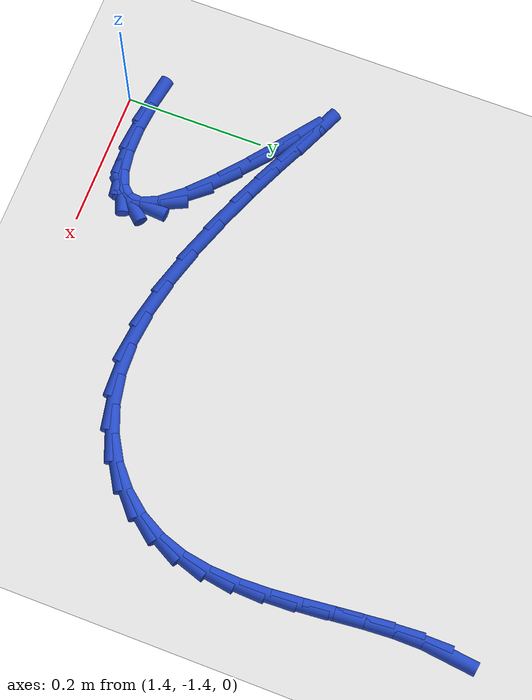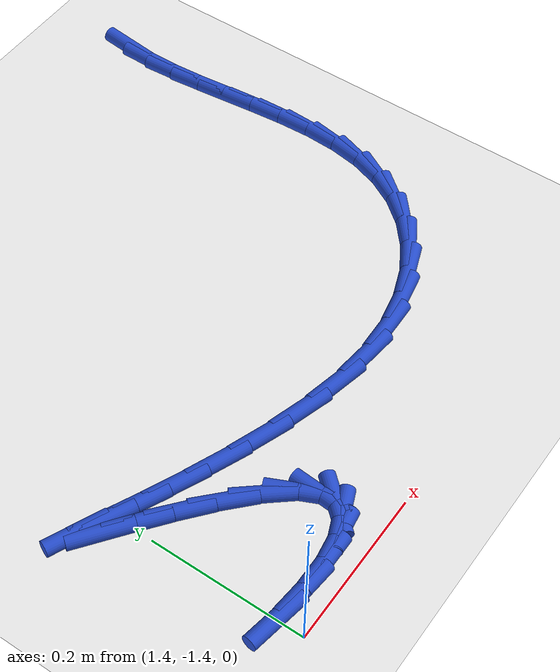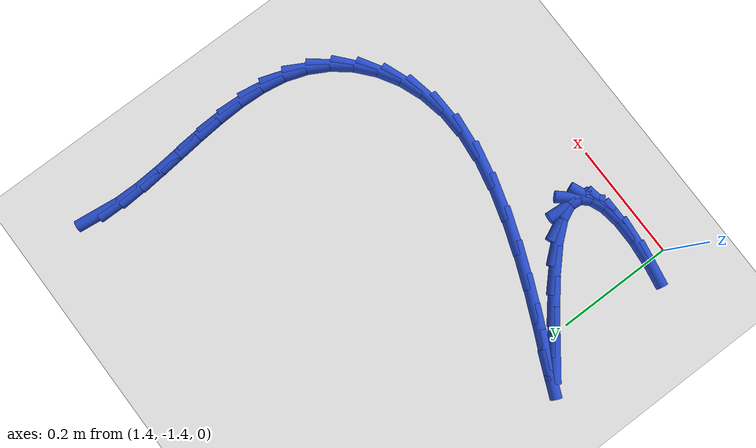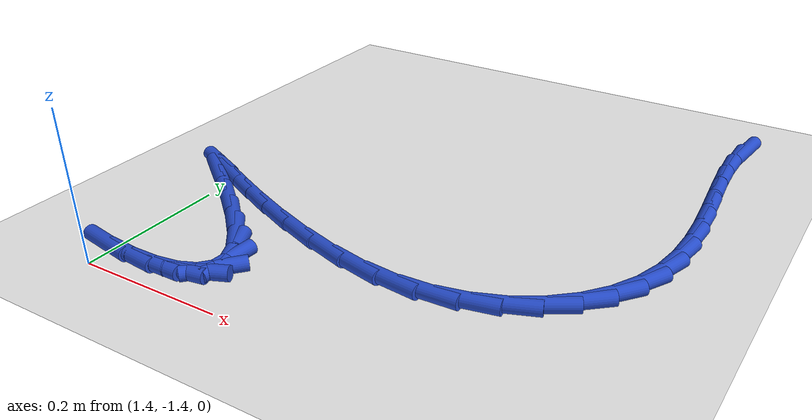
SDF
<sdf version="1.6">
 <world name="default">
  <model name="ground_plane">
   <static>1</static>
   <link name="link">
    <collision name="collision">
     <geometry><plane><normal>0 0 1</normal><size>100 100</size></plane></geometry>
     <surface><friction><ode><mu>100</mu><mu2>50</mu2></ode></friction></surface>
    </collision>
    <visual name="visual">
     <cast_shadows>0</cast_shadows>
     <geometry><plane><normal>0 0 1</normal><size>100 100</size></plane></geometry>
     <material>
      <script><uri>file://media/materials/scripts/gazebo.material</uri><name>Gazebo/WhiteGlow</name></script>
     </material>
    </visual>
   </link>
  </model>
  <model name="line">
   <link name="link_135">
    <pose>1.9930893218824468 -0.7109536044052941 0.01 0 1.57 1.4560143768241374</pose>
    <collision name="collision">
     <geometry><cylinder><radius>0.01</radius><length>0.08</length></cylinder></geometry>
    </collision>
    <visual name="visual">
     <material>
      <script><name>Gazebo/Blue</name><uri>file://media/materials/scripts/gazebo.material</uri></script>
     </material>
     <geometry><cylinder><radius>0.01</radius><length>0.08</length></cylinder></geometry>
    </visual>
   </link>
   <link name="link_136">
    <pose>1.9888282580443786 -0.7479135476541611 0.01 0 1.57 1.56541592826664</pose>
    <collision name="collision">
     <geometry><cylinder><radius>0.01</radius><length>0.08</length></cylinder></geometry>
    </collision>
    <visual name="visual">
     <material>
      <script><name>Gazebo/Blue</name><uri>file://media/materials/scripts/gazebo.material</uri></script>
     </material>
     <geometry><cylinder><radius>0.01</radius><length>0.08</length></cylinder></geometry>
    </visual>
   </link>
   <link name="link_137">
    <pose>1.9886161925768024 -0.7873276208161084 0.01 0 1.57 -1.507919849885243</pose>
    <collision name="collision">
     <geometry><cylinder><radius>0.01</radius><length>0.08</length></cylinder></geometry>
    </collision>
    <visual name="visual">
     <material>
      <script><name>Gazebo/Blue</name><uri>file://media/materials/scripts/gazebo.material</uri></script>
     </material>
     <geometry><cylinder><radius>0.01</radius><length>0.08</length></cylinder></geometry>
    </visual>
   </link>
   <link name="link_138">
    <pose>1.9912142927350704 -0.828593855220499 0.01 0 1.57 -1.473042491546014</pose>
    <collision name="collision">
     <geometry><cylinder><radius>0.01</radius><length>0.08</length></cylinder></geometry>
    </collision>
    <visual name="visual">
     <material>
      <script><name>Gazebo/Blue</name><uri>file://media/materials/scripts/gazebo.material</uri></script>
     </material>
     <geometry><cylinder><radius>0.01</radius><length>0.08</length></cylinder></geometry>
    </visual>
   </link>
   <link name="link_139">
    <pose>1.995383725774534 -0.871110282196696 0.01 0 1.57 -1.4668752924880777</pose>
    <collision name="collision">
     <geometry><cylinder><radius>0.01</radius><length>0.08</length></cylinder></geometry>
    </collision>
    <visual name="visual">
     <material>
      <script><name>Gazebo/Blue</name><uri>file://media/materials/scripts/gazebo.material</uri></script>
     </material>
     <geometry><cylinder><radius>0.01</radius><length>0.08</length></cylinder></geometry>
    </visual>
   </link>
   <link name="link_140">
    <pose>1.9998856589505438 -0.9142749330740632 0.01 0 1.57 -1.4877770946438442</pose>
    <collision name="collision">
     <geometry><cylinder><radius>0.01</radius><length>0.08</length></cylinder></geometry>
    </collision>
    <visual name="visual">
     <material>
      <script><name>Gazebo/Blue</name><uri>file://media/materials/scripts/gazebo.material</uri></script>
     </material>
     <geometry><cylinder><radius>0.01</radius><length>0.08</length></cylinder></geometry>
    </visual>
   </link>
   <link name="link_141">
    <pose>2.003481259518451 -0.9574858391819606 0.01 0 1.57 -1.5368057036457148</pose>
    <collision name="collision">
     <geometry><cylinder><radius>0.01</radius><length>0.08</length></cylinder></geometry>
    </collision>
    <visual name="visual">
     <material>
      <script><name>Gazebo/Blue</name><uri>file://media/materials/scripts/gazebo.material</uri></script>
     </material>
     <geometry><cylinder><radius>0.01</radius><length>0.08</length></cylinder></geometry>
    </visual>
   </link>
   <link name="link_142">
    <pose>2.004931694733608 -1.0001410318497532 0.01 0 1.57 1.5242353311985628</pose>
    <collision name="collision">
     <geometry><cylinder><radius>0.01</radius><length>0.08</length></cylinder></geometry>
    </collision>
    <visual name="visual">
     <material>
      <script><name>Gazebo/Blue</name><uri>file://media/materials/scripts/gazebo.material</uri></script>
     </material>
     <geometry><cylinder><radius>0.01</radius><length>0.08</length></cylinder></geometry>
    </visual>
   </link>
   <link name="link_143">
    <pose>2.002998131851366 -1.0416385424068038 0.01 0 1.57 1.4072783591644038</pose>
    <collision name="collision">
     <geometry><cylinder><radius>0.01</radius><length>0.08</length></cylinder></geometry>
    </collision>
    <visual name="visual">
     <material>
      <script><name>Gazebo/Blue</name><uri>file://media/materials/scripts/gazebo.material</uri></script>
     </material>
     <geometry><cylinder><radius>0.01</radius><length>0.08</length></cylinder></geometry>
    </visual>
   </link>
   <link name="link_144">
    <pose>1.996441738127076 -1.0813764021824759 0.01 0 1.57 1.2504246719516807</pose>
    <collision name="collision">
     <geometry><cylinder><radius>0.01</radius><length>0.08</length></cylinder></geometry>
    </collision>
    <visual name="visual">
     <material>
      <script><name>Gazebo/Blue</name><uri>file://media/materials/scripts/gazebo.material</uri></script>
     </material>
     <geometry><cylinder><radius>0.01</radius><length>0.08</length></cylinder></geometry>
    </visual>
   </link>
   <link name="link_145">
    <pose>1.9840405541509372 -1.1187516644039261 0.01 0 1.57 1.0702103163533605</pose>
    <collision name="collision">
     <geometry><cylinder><radius>0.01</radius><length>0.08</length></cylinder></geometry>
    </collision>
    <visual name="visual">
     <material>
      <script><name>Gazebo/Blue</name><uri>file://media/materials/scripts/gazebo.material</uri></script>
     </material>
     <geometry><cylinder><radius>0.01</radius><length>0.08</length></cylinder></geometry>
    </visual>
   </link>
   <link name="link_146">
    <pose>1.9652373278178834 -1.153122850989249 0.01 0 1.57 0.8890637544611137</pose>
    <collision name="collision">
     <geometry><cylinder><radius>0.01</radius><length>0.08</length></cylinder></geometry>
    </collision>
    <visual name="visual">
     <material>
      <script><name>Gazebo/Blue</name><uri>file://media/materials/scripts/gazebo.material</uri></script>
     </material>
     <geometry><cylinder><radius>0.01</radius><length>0.08</length></cylinder></geometry>
    </visual>
   </link>
   <link name="link_147">
    <pose>1.940343385474331 -1.183798134681011 0.01 0 1.57 0.7094340647532353</pose>
    <collision name="collision">
     <geometry><cylinder><radius>0.01</radius><length>0.08</length></cylinder></geometry>
    </collision>
    <visual name="visual">
     <material>
      <script><name>Gazebo/Blue</name><uri>file://media/materials/scripts/gazebo.material</uri></script>
     </material>
     <geometry><cylinder><radius>0.01</radius><length>0.08</length></cylinder></geometry>
    </visual>
   </link>
   <link name="link_148">
    <pose>1.9097286179134831 -1.2100822933970414 0.01 0 1.57 0.5325812234509781</pose>
    <collision name="collision">
     <geometry><cylinder><radius>0.01</radius><length>0.08</length></cylinder></geometry>
    </collision>
    <visual name="visual">
     <material>
      <script><name>Gazebo/Blue</name><uri>file://media/materials/scripts/gazebo.material</uri></script>
     </material>
     <geometry><cylinder><radius>0.01</radius><length>0.08</length></cylinder></geometry>
    </visual>
   </link>
   <link name="link_149">
    <pose>1.873762915928547 -1.231280105055171 0.01 0 1.57 0.36008065767033426</pose>
    <collision name="collision">
     <geometry><cylinder><radius>0.01</radius><length>0.08</length></cylinder></geometry>
    </collision>
    <visual name="visual">
     <material>
      <script><name>Gazebo/Blue</name><uri>file://media/materials/scripts/gazebo.material</uri></script>
     </material>
     <geometry><cylinder><radius>0.01</radius><length>0.08</length></cylinder></geometry>
    </visual>
   </link>
   <link name="link_150">
    <pose>1.8328161703127264 -1.2466963475732307 0.01 0 1.57 0.19376001714990487</pose>
    <collision name="collision">
     <geometry><cylinder><radius>0.01</radius><length>0.08</length></cylinder></geometry>
    </collision>
    <visual name="visual">
     <material>
      <script><name>Gazebo/Blue</name><uri>file://media/materials/scripts/gazebo.material</uri></script>
     </material>
     <geometry><cylinder><radius>0.01</radius><length>0.08</length></cylinder></geometry>
    </visual>
   </link>
   <link name="link_151">
    <pose>1.7872582718592263 -1.255635798869051 0.01 0 1.57 0.0354764302422073</pose>
    <collision name="collision">
     <geometry><cylinder><radius>0.01</radius><length>0.08</length></cylinder></geometry>
    </collision>
    <visual name="visual">
     <material>
      <script><name>Gazebo/Blue</name><uri>file://media/materials/scripts/gazebo.material</uri></script>
     </material>
     <geometry><cylinder><radius>0.01</radius><length>0.08</length></cylinder></geometry>
    </visual>
   </link>
   <link name="link_152">
    <pose>1.7374591113612508 -1.257403236860462 0.01 0 1.57 -0.10801840522885872</pose>
    <collision name="collision">
     <geometry><cylinder><radius>0.01</radius><length>0.08</length></cylinder></geometry>
    </collision>
    <visual name="visual">
     <material>
      <script><name>Gazebo/Blue</name><uri>file://media/materials/scripts/gazebo.material</uri></script>
     </material>
     <geometry><cylinder><radius>0.01</radius><length>0.08</length></cylinder></geometry>
    </visual>
   </link>
   <link name="link_153">
    <pose>1.6839769914389022 -1.2516036093547231 0.01 0 1.57 -0.2151621604449955</pose>
    <collision name="collision">
     <geometry><cylinder><radius>0.01</radius><length>0.08</length></cylinder></geometry>
    </collision>
    <visual name="visual">
     <material>
      <script><name>Gazebo/Blue</name><uri>file://media/materials/scripts/gazebo.material</uri></script>
     </material>
     <geometry><cylinder><radius>0.01</radius><length>0.08</length></cylinder></geometry>
    </visual>
   </link>
   <link name="link_154">
    <pose>1.6283818525208857 -1.2394535634571058 0.01 0 1.57 -0.2915417235025367</pose>
    <collision name="collision">
     <geometry><cylinder><radius>0.01</radius><length>0.08</length></cylinder></geometry>
    </collision>
    <visual name="visual">
     <material>
      <script><name>Gazebo/Blue</name><uri>file://media/materials/scripts/gazebo.material</uri></script>
     </material>
     <geometry><cylinder><radius>0.01</radius><length>0.08</length></cylinder></geometry>
    </visual>
   </link>
   <link name="link_155">
    <pose>1.5725817113553846 -1.2227083554096212 0.01 0 1.57 -0.347352129865299</pose>
    <collision name="collision">
     <geometry><cylinder><radius>0.01</radius><length>0.08</length></cylinder></geometry>
    </collision>
    <visual name="visual">
     <material>
      <script><name>Gazebo/Blue</name><uri>file://media/materials/scripts/gazebo.material</uri></script>
     </material>
     <geometry><cylinder><radius>0.01</radius><length>0.08</length></cylinder></geometry>
    </visual>
   </link>
   <link name="link_156">
    <pose>1.518484823048776 -1.2031236211966432 0.01 0 1.57 -0.3885819360690573</pose>
    <collision name="collision">
     <geometry><cylinder><radius>0.01</radius><length>0.08</length></cylinder></geometry>
    </collision>
    <visual name="visual">
     <material>
      <script><name>Gazebo/Blue</name><uri>file://media/materials/scripts/gazebo.material</uri></script>
     </material>
     <geometry><cylinder><radius>0.01</radius><length>0.08</length></cylinder></geometry>
    </visual>
   </link>
   <link name="link_157">
    <pose>1.4679994427074339 -1.1824549968025435 0.01 0 1.57 -0.418450125305908</pose>
    <collision name="collision">
     <geometry><cylinder><radius>0.01</radius><length>0.08</length></cylinder></geometry>
    </collision>
    <visual name="visual">
     <material>
      <script><name>Gazebo/Blue</name><uri>file://media/materials/scripts/gazebo.material</uri></script>
     </material>
     <geometry><cylinder><radius>0.01</radius><length>0.08</length></cylinder></geometry>
    </visual>
   </link>
   <link name="link_158">
    <pose>1.4230338254377388 -1.1624581182116975 0.01 0 1.57 -0.4377630209671348</pose>
    <collision name="collision">
     <geometry><cylinder><radius>0.01</radius><length>0.08</length></cylinder></geometry>
    </collision>
    <visual name="visual">
     <material>
      <script><name>Gazebo/Blue</name><uri>file://media/materials/scripts/gazebo.material</uri></script>
     </material>
     <geometry><cylinder><radius>0.01</radius><length>0.08</length></cylinder></geometry>
    </visual>
   </link>
   <link name="link_159">
    <pose>1.3854962263460655 -1.1448886214084775 0.01 0 1.57 -0.44318355769831114</pose>
    <collision name="collision">
     <geometry><cylinder><radius>0.01</radius><length>0.08</length></cylinder></geometry>
    </collision>
    <visual name="visual">
     <material>
      <script><name>Gazebo/Blue</name><uri>file://media/materials/scripts/gazebo.material</uri></script>
     </material>
     <geometry><cylinder><radius>0.01</radius><length>0.08</length></cylinder></geometry>
    </visual>
   </link>
   <link name="link_160">
    <pose>1.3572949005387902 -1.1315021423772564 0.01 0 1.57 -0.4138562029275828</pose>
    <collision name="collision">
     <geometry><cylinder><radius>0.01</radius><length>0.08</length></cylinder></geometry>
    </collision>
    <visual name="visual">
     <material>
      <script><name>Gazebo/Blue</name><uri>file://media/materials/scripts/gazebo.material</uri></script>
     </material>
     <geometry><cylinder><radius>0.01</radius><length>0.08</length></cylinder></geometry>
    </visual>
   </link>
   <link name="link_164">
    <pose>1.3720521246804465 -1.1523860442784055 0.01 0 1.57 -0.6460089807897337</pose>
    <collision name="collision">
     <geometry><cylinder><radius>0.01</radius><length>0.08</length></cylinder></geometry>
    </collision>
    <visual name="visual">
     <material>
      <script><name>Gazebo/Blue</name><uri>file://media/materials/scripts/gazebo.material</uri></script>
     </material>
     <geometry><cylinder><radius>0.01</radius><length>0.08</length></cylinder></geometry>
    </visual>
   </link>
   <link name="link_165">
    <pose>1.4054269102515844 -1.1775481609474003 0.01 0 1.57 -0.6628628197061311</pose>
    <collision name="collision">
     <geometry><cylinder><radius>0.01</radius><length>0.08</length></cylinder></geometry>
    </collision>
    <visual name="visual">
     <material>
      <script><name>Gazebo/Blue</name><uri>file://media/materials/scripts/gazebo.material</uri></script>
     </material>
     <geometry><cylinder><radius>0.01</radius><length>0.08</length></cylinder></geometry>
    </visual>
   </link>
   <link name="link_166">
    <pose>1.4432242355701521 -1.2070566215490894 0.01 0 1.57 -0.6965986884245877</pose>
    <collision name="collision">
     <geometry><cylinder><radius>0.01</radius><length>0.08</length></cylinder></geometry>
    </collision>
    <visual name="visual">
     <material>
      <script><name>Gazebo/Blue</name><uri>file://media/materials/scripts/gazebo.material</uri></script>
     </material>
     <geometry><cylinder><radius>0.01</radius><length>0.08</length></cylinder></geometry>
    </visual>
   </link>
   <link name="link_167">
    <pose>1.48092826747871 -1.2385956897089478 0.01 0 1.57 -0.7567968110924513</pose>
    <collision name="collision">
     <geometry><cylinder><radius>0.01</radius><length>0.08</length></cylinder></geometry>
    </collision>
    <visual name="visual">
     <material>
      <script><name>Gazebo/Blue</name><uri>file://media/materials/scripts/gazebo.material</uri></script>
     </material>
     <geometry><cylinder><radius>0.01</radius><length>0.08</length></cylinder></geometry>
    </visual>
   </link>
   <link name="link_168">
    <pose>1.5140231728198223 -1.2698496290524528 0.01 0 1.57 -0.874158246854437</pose>
    <collision name="collision">
     <geometry><cylinder><radius>0.01</radius><length>0.08</length></cylinder></geometry>
    </collision>
    <visual name="visual">
     <material>
      <script><name>Gazebo/Blue</name><uri>file://media/materials/scripts/gazebo.material</uri></script>
     </material>
     <geometry><cylinder><radius>0.01</radius><length>0.08</length></cylinder></geometry>
    </visual>
   </link>
   <link name="link_169">
    <pose>1.537993118436052 -1.29850270320508 0.01 0 1.57 -1.1364981101340688</pose>
    <collision name="collision">
     <geometry><cylinder><radius>0.01</radius><length>0.08</length></cylinder></geometry>
    </collision>
    <visual name="visual">
     <material>
      <script><name>Gazebo/Blue</name><uri>file://media/materials/scripts/gazebo.material</uri></script>
     </material>
     <geometry><cylinder><radius>0.01</radius><length>0.08</length></cylinder></geometry>
    </visual>
   </link>
   <link name="link_170">
    <pose>1.5491640821280792 -1.3225866927256362 0.01 0 1.57 1.4957221865350274</pose>
    <collision name="collision">
     <geometry><cylinder><radius>0.01</radius><length>0.08</length></cylinder></geometry>
    </collision>
    <visual name="visual">
     <material>
      <script><name>Gazebo/Blue</name><uri>file://media/materials/scripts/gazebo.material</uri></script>
     </material>
     <geometry><cylinder><radius>0.01</radius><length>0.08</length></cylinder></geometry>
    </visual>
   </link>
   <link name="link_171">
    <pose>1.5477243720529525 -1.3417278278388596 0.01 0 1.57 0.8417976675502333</pose>
    <collision name="collision">
     <geometry><cylinder><radius>0.01</radius><length>0.08</length></cylinder></geometry>
    </collision>
    <visual name="visual">
     <material>
      <script><name>Gazebo/Blue</name><uri>file://media/materials/scripts/gazebo.material</uri></script>
     </material>
     <geometry><cylinder><radius>0.01</radius><length>0.08</length></cylinder></geometry>
    </visual>
   </link>
   <link name="link_172">
    <pose>1.5349693246018024 -1.3560093428667948 0.01 0 1.57 0.39537469999456365</pose>
    <collision name="collision">
     <geometry><cylinder><radius>0.01</radius><length>0.08</length></cylinder></geometry>
    </collision>
    <visual name="visual">
     <material>
      <script><name>Gazebo/Blue</name><uri>file://media/materials/scripts/gazebo.material</uri></script>
     </material>
     <geometry><cylinder><radius>0.01</radius><length>0.08</length></cylinder></geometry>
    </visual>
   </link>
   <link name="link_173">
    <pose>1.5121943684270316 -1.3655145102188446 0.01 0 1.57 0.15159550483644188</pose>
    <collision name="collision">
     <geometry><cylinder><radius>0.01</radius><length>0.08</length></cylinder></geometry>
    </collision>
    <visual name="visual">
     <material>
      <script><name>Gazebo/Blue</name><uri>file://media/materials/scripts/gazebo.material</uri></script>
     </material>
     <geometry><cylinder><radius>0.01</radius><length>0.08</length></cylinder></geometry>
    </visual>
   </link>
   <link name="link_174">
    <pose>1.4806949321810465 -1.3703266023044125 0.01 0 1.57 0.005196384957457012</pose>
    <collision name="collision">
     <geometry><cylinder><radius>0.01</radius><length>0.08</length></cylinder></geometry>
    </collision>
    <visual name="visual">
     <material>
      <script><name>Gazebo/Blue</name><uri>file://media/materials/scripts/gazebo.material</uri></script>
     </material>
     <geometry><cylinder><radius>0.01</radius><length>0.08</length></cylinder></geometry>
    </visual>
   </link>
   <link name="link_175">
    <pose>1.4417664445162481 -1.3705288915328997 0.01 0 1.57 -0.09566885657478336</pose>
    <collision name="collision">
     <geometry><cylinder><radius>0.01</radius><length>0.08</length></cylinder></geometry>
    </collision>
    <visual name="visual">
     <material>
      <script><name>Gazebo/Blue</name><uri>file://media/materials/scripts/gazebo.material</uri></script>
     </material>
     <geometry><cylinder><radius>0.01</radius><length>0.08</length></cylinder></geometry>
    </visual>
   </link>
   <link name="link_176">
    <pose>1.3967043340850445 -1.3662046503137102 0.01 0 1.57 -0.17392509129834613</pose>
    <collision name="collision">
     <geometry><cylinder><radius>0.01</radius><length>0.08</length></cylinder></geometry>
    </collision>
    <visual name="visual">
     <material>
      <script><name>Gazebo/Blue</name><uri>file://media/materials/scripts/gazebo.material</uri></script>
     </material>
     <geometry><cylinder><radius>0.01</radius><length>0.08</length></cylinder></geometry>
    </visual>
   </link>
  </model>
 </world>
</sdf>
